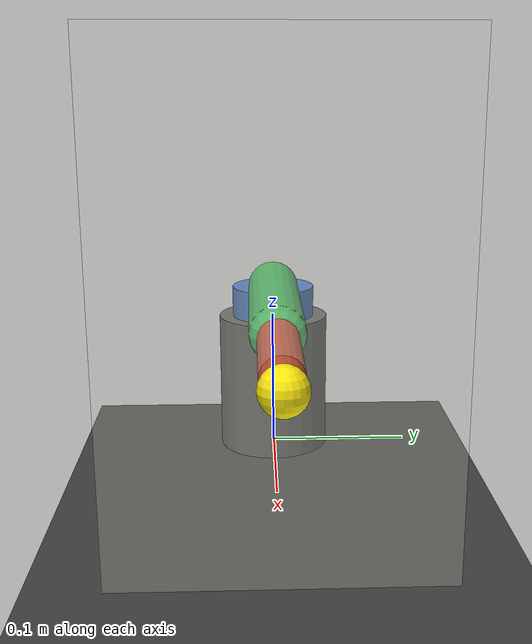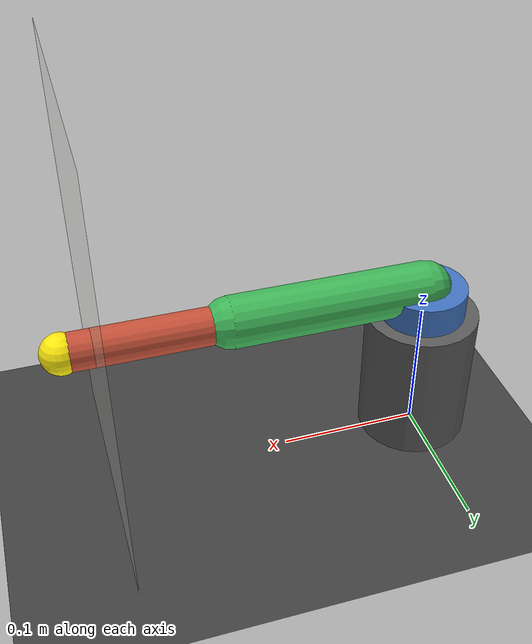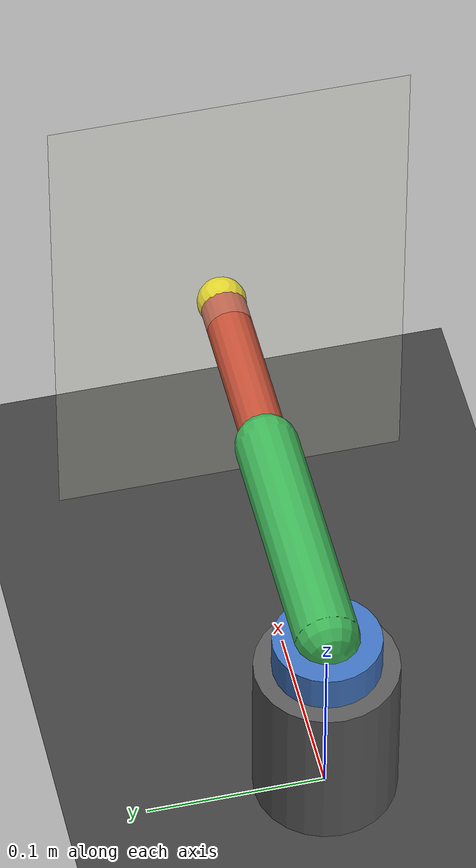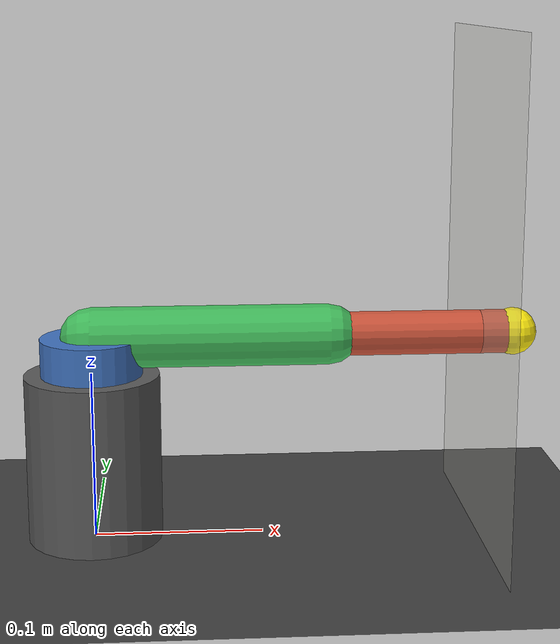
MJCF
<mujoco model="lego_arm_writer">
  <compiler angle="radian" autolimits="true"/>
  <option gravity="0 0 -9.81" timestep="0.005" integrator="RK4"/>

  <default>
    <joint damping="0.5" armature="0.01" frictionloss="0.05"/>
    <geom contype="1" conaffinity="1" condim="3" rgba="0.5 0.5 0.5 1"/>
    <position kp="25" kv="3" ctrllimited="true"/>
  </default>

  <asset>
    <texture type="skybox" builtin="gradient"
             rgb1="0.6 0.6 0.7" rgb2="0.2 0.2 0.3" width="256" height="256"/>
    <texture type="2d" name="grid" builtin="checker"
             rgb1="0.28 0.28 0.28" rgb2="0.22 0.22 0.22" width="300" height="300"/>
    <material name="grid" texture="grid" texrepeat="4 4" reflectance="0.15"/>
  </asset>

  <worldbody>
    <light directional="true" diffuse="0.8 0.8 0.8" pos="0.5 0 2" dir="-0.5 0 -1"/>
    <light directional="true" diffuse="0.4 0.4 0.4" pos="-0.5 0 2" dir="0.3 0 -1"/>
    <geom name="ground" type="plane" size="1 1 0.01" material="grid"/>

    <!-- Base pedestal -->
    <geom name="pedestal" type="cylinder" size="0.04 0.05"
          pos="0 0 0.05" rgba="0.35 0.35 0.35 1"/>

    <!-- ── Joint 1: Base yaw (Z-axis) — sweeps LED left/right ─────────────── -->
    <body name="turret" pos="0 0 0.1">
      <joint name="j1" type="hinge" axis="0 0 1" range="-1.2 1.2"/>
      <geom type="cylinder" size="0.03 0.022" rgba="0.25 0.45 0.75 1"/>

      <!-- ── Joint 2: Shoulder elevation (Y-axis) — sweeps up/down ─────────── -->
      <body name="upper_arm" pos="0 0 0.022">
        <joint name="j2" type="hinge" axis="0 1 0" range="-0.2 1.2"/>
        <geom type="capsule" fromto="0 0 0 0.14 0 0" size="0.018"
              rgba="0.25 0.72 0.35 1"/>

        <!-- ── Joint 3: Elbow flexion (Y-axis) ────────────────────────────── -->
        <body name="forearm" pos="0.14 0 0">
          <joint name="j3" type="hinge" axis="0 1 0" range="-1.5 1.5"/>
          <geom type="capsule" fromto="0 0 0 0.11 0 0" size="0.013"
                rgba="0.78 0.32 0.22 1"/>

          <!-- LED end-effector -->
          <body name="led_body" pos="0.11 0 0">
            <geom name="led" type="sphere" size="0.014"
                  rgba="1.0 0.92 0.05 1" contype="0" conaffinity="0"/>
            <site name="led" pos="0 0 0" size="0.006" rgba="1 1 0.2 1"/>
          </body>
        </body>
      </body>
    </body>

    <!-- Writing canvas — visual reference only (vertical plane at x=0.23 m) -->
    <geom name="canvas" type="plane" size="0.16 0.10 0.001"
          pos="0.23 0 0.14" euler="0 1.5708 0"
          rgba="0.98 0.98 0.92 0.25" contype="0" conaffinity="0"/>
  </worldbody>

  <!-- Position servos: ctrl[i] = target joint angle in radians -->
  <actuator>
    <position name="act_j1" joint="j1" kp="25" ctrlrange="-1.2  1.2"/>
    <position name="act_j2" joint="j2" kp="25" ctrlrange="-0.2  1.2"/>
    <position name="act_j3" joint="j3" kp="20" ctrlrange="-1.5  1.5"/>
  </actuator>
</mujoco>
